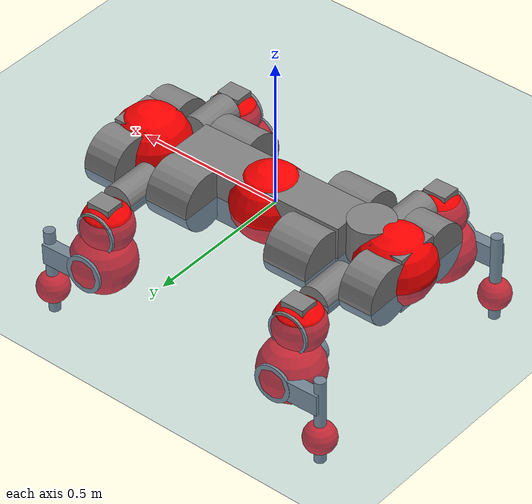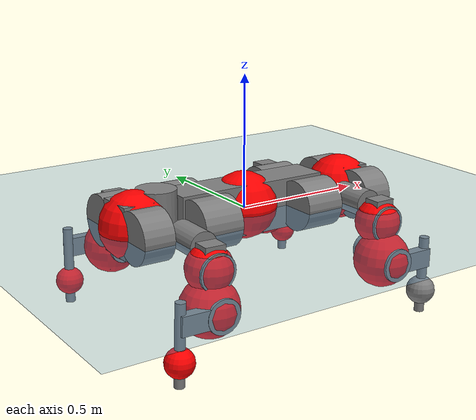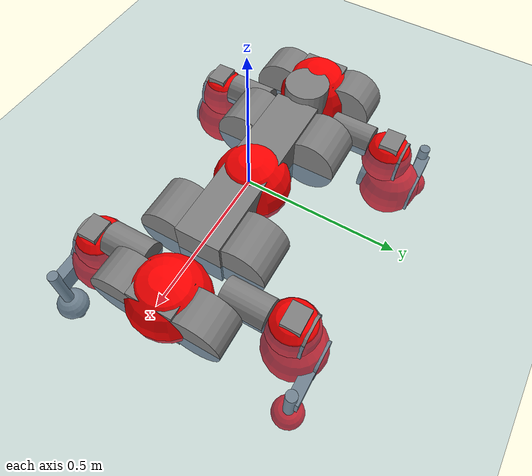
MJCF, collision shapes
<mujoco model="anymal_c">
  <compiler angle="radian" assetdir="assets" balanceinertia="true" inertiafromgeom="false"/>

  <option timestep="0.005" density="1.2" viscosity="2e-05"/>

  <size nkey="1"/>

  <visual>
    <quality shadowsize="8192"/>
    <map shadowclip="0.5"/>
  </visual>

  <default>
    <default class="/">
      <material specular="0" shininess="0.25"/>
      <geom contype="0" conaffinity="0" group="1" solref="-1000 -80"/>
      <site size="0.01 0.005 0.005" group="5"/>
      <general forcelimited="true" forcerange="-80 80" biastype="affine" gainprm="80" biasprm="0 -80 -2"/>
      <default class="anymal_c">
        <joint armature="0.01" damping="0.01" frictionloss="0.1"/>
        <default class="visual">
          <geom type="mesh" group="2"/>
          <default class="visual_zflip"/>
        </default>
        <default class="collision">
          <geom type="cylinder" group="3"/>
          <default class="foot">
            <geom size="0.03 0 0" type="sphere" condim="6" priority="1" friction="0.8 0.02 0.01" solimp="0.015 1 0.03"/>
          </default>
        </default>
      </default>
      <default class="reward_collision_sphere">
        <geom group="5" rgba="1 0 0 1"/>
      </default>
    </default>
  </default>

  <asset>
    <texture type="skybox" colorspace="auto" name="//unnamed_texture_0" builtin="gradient" rgb1="0.95 0.95 0.95" rgb2="0.95 0.95 0.95" width="100" height="600"/>
    <texture type="2d" colorspace="auto" name="texplane" builtin="checker" rgb1="0.345 0.575 0.748" rgb2="0.345 0.575 0.748" markrgb="1 1 1" width="512" height="512"/>
    <texture type="2d" colorspace="linear" name="base" file="base.png"/>
    <texture type="2d" colorspace="linear" name="top_shell" file="top_shell.png"/>
    <texture type="2d" colorspace="linear" name="bottom_shell" file="bottom_shell.png"/>
    <texture type="2d" colorspace="linear" name="remote" file="remote.png"/>
    <texture type="2d" colorspace="linear" name="hatch" file="hatch.png"/>
    <texture type="2d" colorspace="linear" name="handle" file="handle.png"/>
    <texture type="2d" colorspace="linear" name="face" file="face.png"/>
    <texture type="2d" colorspace="linear" name="battery" file="battery.png"/>
    <texture type="2d" colorspace="linear" name="lidar_cage" file="lidar_cage.png"/>
    <texture type="2d" colorspace="linear" name="depth_camera" file="depth_camera.png"/>
    <texture type="2d" colorspace="linear" name="wide_angle_camera" file="wide_angle_camera.png"/>
    <texture type="2d" colorspace="linear" name="lidar" file="lidar.png"/>
    <texture type="2d" colorspace="linear" name="drive" file="drive.png"/>
    <texture type="2d" colorspace="linear" name="hip_l" file="hip_l.png"/>
    <texture type="2d" colorspace="linear" name="shank_l" file="shank_l.png"/>
    <texture type="2d" colorspace="linear" name="foot" file="foot.png"/>
    <texture type="2d" colorspace="linear" name="thigh" file="thigh.png"/>
    <texture type="2d" colorspace="linear" name="shank_r" file="shank_r.png"/>
    <texture type="2d" colorspace="linear" name="hip_r" file="hip_r.png"/>
    <material name="MatPlane" class="/" texture="texplane" texuniform="true" texrepeat="2 2" specular="0.9" shininess="0.5"/>
    <material name="black_plastic" class="/" rgba="0.007 0.007 0.007 1"/>
    <material name="green" class="/" rgba="0.052 0.178 0.033 1"/>
    <material name="red" class="/" rgba="0.178 0.006 0.005 1"/>
    <material name="yellow" class="/" rgba="0.178 0.119 0.006 1"/>
    <material name="lwl" class="/" rgba="0.8 0.8 0.8 1"/>
    <material name="base" class="/" texture="base"/>
    <material name="top_shell" class="/" texture="top_shell"/>
    <material name="bottom_shell" class="/" texture="bottom_shell"/>
    <material name="hip_l" class="/" texture="hip_l"/>
    <material name="thigh" class="/" texture="thigh"/>
    <material name="shank_l" class="/" texture="shank_l"/>
    <material name="foot" class="/" texture="foot"/>
    <material name="hip_r" class="/" texture="hip_r"/>
    <material name="shank" class="/" texture="shank_r"/>
    <material name="hatch" class="/" texture="hatch"/>
    <material name="remote" class="/" texture="remote"/>
    <material name="handle" class="/" texture="handle"/>
    <material name="face" class="/" texture="face"/>
    <material name="depth_camera" class="/" texture="depth_camera"/>
    <material name="wide_angle_camera" class="/" texture="wide_angle_camera"/>
    <material name="battery" class="/" texture="battery"/>
    <material name="lidar_cage" class="/" texture="lidar_cage"/>
    <material name="lidar" class="/" texture="lidar"/>
    <material name="drive" class="/" texture="drive"/>
    <mesh name="base_0" class="/" file="base_0.obj"/>
    <mesh name="base_1" class="/" file="base_1.obj"/>
    <mesh name="base_2" class="/" file="base_2.obj"/>
    <mesh name="base_3" class="/" file="base_3.obj"/>
    <mesh name="base_4" class="/" file="base_4.obj"/>
    <mesh name="base_5" class="/" file="base_5.obj"/>
    <mesh name="top_shell" class="/" file="top_shell.obj"/>
    <mesh name="bottom_shell" class="/" file="bottom_shell.obj"/>
    <mesh name="remote" class="/" file="remote.obj"/>
    <mesh name="handle" class="/" file="handle.obj"/>
    <mesh name="face" class="/" file="face.obj"/>
    <mesh name="wide_angle_camera" class="/" file="wide_angle_camera.obj"/>
    <mesh name="depth_camera" class="/" file="depth_camera.obj"/>
    <mesh name="battery" class="/" file="battery.obj"/>
    <mesh name="lidar_cage" class="/" file="lidar_cage.obj"/>
    <mesh name="lidar" class="/" file="lidar.obj"/>
    <mesh name="drive" class="/" file="drive.obj"/>
    <mesh name="hip_l" class="/" file="hip_l.obj"/>
    <mesh name="thigh" class="/" file="thigh.obj"/>
    <mesh name="shank_l" class="/" file="shank_l.obj"/>
    <mesh name="foot" class="/" file="foot.obj"/>
    <mesh name="hip_r" class="/" file="hip_r.obj"/>
    <mesh name="hatch" class="/" file="hatch.obj"/>
    <mesh name="shank_r" class="/" file="shank_r.obj"/>
  </asset>

  <worldbody>
    <geom name="floor" class="/" size="100 100 0.125" type="plane" group="0" material="MatPlane"/>
    <light name="toplight_shadow" class="/" pos="0 0 5" dir="0.0990148 0.0990148 -0.990148" type="directional" ambient="0.04 0.04 0.04" diffuse="0.55 0.55 0.55" specular="0.12 0.12 0.12"/>
    <light name="toplight_fill" class="/" pos="0 0 5" dir="0.0990148 0.0990148 -0.990148" type="directional" castshadow="false" ambient="0.04 0.04 0.04" diffuse="0.3 0.3 0.3" specular="0.08 0.08 0.08"/>
    <body name="trunk" childclass="anymal_c" pos="0.00346073 0.0135874 0.00905894" quat="0.999977 -0.000488138 0.00517592 0.00442103">
      <inertial pos="0.0147495 0.0185468 0.00764295" quat="0.455467 0.487762 0.517985 0.535098" mass="22.67" diaginertia="1.06199 11.6187 0.00318514"/>
      <joint name="//unnamed_joint_0" type="free" armature="0" damping="0" frictionloss="0"/>
      <geom name="//unnamed_geom_1" class="visual" material="green" mesh="base_0"/>
      <geom name="//unnamed_geom_2" class="visual" material="yellow" mesh="base_1"/>
      <geom name="//unnamed_geom_3" class="visual" material="red" mesh="base_2"/>
      <geom name="//unnamed_geom_4" class="visual" material="black_plastic" mesh="base_3"/>
      <geom name="//unnamed_geom_5" class="visual" material="lwl" mesh="base_4"/>
      <geom name="//unnamed_geom_6" class="visual" material="base" mesh="base_5"/>
      <geom name="trunk_1" class="collision" size="0.306463 0.0739739 0.0951094" type="box"/>
      <geom name="trunk_2" class="collision" size="0.0951094 0.0766159" pos="0.221614 0.120452 0" quat="0.707107 0 0.707107 0"/>
      <geom name="trunk_3" class="collision" size="0.0951094 0.0766159" pos="-0.221614 0.120452 0" quat="0.707107 0 0.707107 0"/>
      <geom name="trunk_4" class="collision" size="0.0951094 0.0766159" pos="0.221614 -0.120452 0" quat="0.707107 0 0.707107 0"/>
      <geom name="trunk_5" class="collision" size="0.0951094 0.0766159" pos="-0.221614 -0.120452 0" quat="0.707107 0 0.707107 0"/>
      <geom name="//unnamed_geom_12" class="visual" material="top_shell" mesh="top_shell"/>
      <geom name="//unnamed_geom_13" class="visual" material="bottom_shell" mesh="bottom_shell"/>
      <geom name="//unnamed_geom_14" class="visual" material="remote" mesh="remote"/>
      <geom name="//unnamed_geom_15" class="visual" material="handle" mesh="handle"/>
      <geom name="//unnamed_geom_16" class="visual" pos="0.42234 0 0" quat="1 0 0 0" material="face" mesh="face"/>
      <geom name="trunk_6" class="collision" size="0.0581224 0.0739739 0.0951094" pos="0.47838 0 0" type="box"/>
      <geom name="//unnamed_geom_18" class="collision" size="0.0951094 0.0581224" pos="0.47838 0.120452 0" quat="0.707107 0 0.707107 0"/>
      <geom name="//unnamed_geom_19" class="collision" size="0.0951094 0.0581224" pos="0.47838 -0.120452 0" quat="0.707107 0 0.707107 0"/>
      <geom name="//unnamed_geom_20" class="visual" pos="0.470358 0 -0.00810437" quat="0.965926 0 0.258819 0" material="depth_camera" mesh="depth_camera"/>
      <geom name="//unnamed_geom_21" class="visual" pos="0.522703 0 0.00644691" material="wide_angle_camera" mesh="wide_angle_camera"/>
      <geom name="//unnamed_geom_22" class="visual_zflip" pos="-0.42234 0 0" quat="0 0 0 1" material="face" mesh="face"/>
      <geom name="trunk_7" class="collision" size="0.0581224 0.0739739 0.0951094" pos="-0.47838 0 0" quat="0 0 0 1" type="box"/>
      <geom name="//unnamed_geom_24" class="collision" size="0.0951094 0.0581224" pos="-0.47838 -0.120452 0" quat="0 -0.707107 0 0.707107"/>
      <geom name="//unnamed_geom_25" class="collision" size="0.0951094 0.0581224" pos="-0.47838 0.120452 0" quat="0 -0.707107 0 0.707107"/>
      <geom name="//unnamed_geom_26" class="visual" pos="-0.470358 0 -0.00810437" quat="0 -0.258819 0 0.965926" material="depth_camera" mesh="depth_camera"/>
      <geom name="//unnamed_geom_27" class="visual_zflip" pos="-0.522703 0 0.00644691" quat="0 0 0 1" material="wide_angle_camera" mesh="wide_angle_camera"/>
      <geom name="//unnamed_geom_28" class="visual" material="battery" mesh="battery"/>
      <geom name="//unnamed_geom_29" class="visual" pos="0 0.140753 0.0169813" quat="0.683013 -0.183013 0.183013 0.683013" material="depth_camera" mesh="depth_camera"/>
      <geom name="//unnamed_geom_30" class="visual" pos="0 -0.140753 0.0169813" quat="0.683013 0.183013 0.183013 -0.683013" material="depth_camera" mesh="depth_camera"/>
      <geom name="//unnamed_geom_31" class="visual" pos="-0.370885 0 0.0316532" quat="1 0 0 0" material="lidar_cage" mesh="lidar_cage"/>
      <geom name="trunk_8" class="collision" size="0.0739739 0.0634062" pos="-0.370885 0 0.0574925"/>
      <geom name="//unnamed_geom_33" class="visual" pos="-0.370885 0.000275729 0.0612392" quat="0.707107 0 0 -0.707107" material="lidar" mesh="lidar"/>
      <geom name="//unnamed_geom_34" class="visual" pos="0.305572 0.178499 2.22541e-08" quat="0.258819 0.965926 0 0" material="drive" mesh="drive"/>
      <geom name="//unnamed_geom_35" class="visual" pos="0.305572 -0.178499 -2.22541e-08" quat="0.258819 -0.965926 0 0" material="drive" mesh="drive"/>
      <geom name="//unnamed_geom_36" class="visual" pos="-0.305572 0.178499 -2.22541e-08" quat="0 0 0.965926 -0.258819" material="drive" mesh="drive"/>
      <geom name="//unnamed_geom_37" class="visual" pos="-0.305572 -0.178499 2.22541e-08" quat="0 0 -0.965926 -0.258819" material="drive" mesh="drive"/>
      <geom name="//unnamed_geom_38" class="visual" pos="0.118194 0 0.0314378" quat="1 0 0 0" material="hatch" mesh="hatch"/>
      <geom name="//unnamed_geom_39" class="reward_collision_sphere" size="0.126812"/>
      <geom name="//unnamed_geom_40" class="reward_collision_sphere" size="0.126812" pos="0.458512 0 0"/>
      <geom name="//unnamed_geom_41" class="reward_collision_sphere" size="0.126812" pos="-0.458512 0 0"/>
      <site name="imu" pos="0.281809 -0.0094355 -0.00377068" size="0.0105677"/>
      <camera name="track" pos="0 -3.44148 0" quat="0.707107 0.707107 0 0" mode="trackcom"/>
      <camera name="ego_camera" pos="0.458512 0 -0.0172262" quat="-0.5 -0.5 0.5 0.5"/>
      <body name="LF_HIP" pos="0.300173 0.176893 -0.00529202" quat="0.256798 0.966465 0.000463037 -0.000492406">
        <inertial pos="0.0570208 -0.0105284 -0.00666483" quat="-0.0425874 0.735151 -0.171165 0.654555" mass="2.82921" diaginertia="0.00618719 0.0765222 4.66563e-05"/>
        <joint name="LF_HAA" pos="0 0 0" axis="0.998869 0.00456687 -0.0473329" range="-0.482763 0.62727" armature="0.0139213" damping="0" frictionloss="0.121811"/>
        <geom name="//unnamed_geom_42" class="visual" pos="0 0.00130911 -0.00021502" quat="0.258819 -0.965926 0 0" material="hip_l" mesh="hip_l"/>
        <geom name="//unnamed_geom_43" class="visual" pos="0.061033 -0.0827368 -0.0382259" quat="0.183013 -0.683013 0.683013 0.183013" material="drive" mesh="drive"/>
        <geom name="//unnamed_geom_44" class="collision" size="0.0528385 0.0739739" pos="0.061033 -0.0205797 -0.00297368" quat="-0.353553 -0.612372 0.612372 -0.353553"/>
        <body name="LF_THIGH" pos="0.0454224 -0.136765 -0.0266944" quat="0.182472 -0.681202 0.687137 0.174673">
          <inertial pos="0.0349776 -0.0189404 -0.0988719" quat="0.996799 0.0254175 -0.049489 0.0574089" mass="2.96856" diaginertia="0.0386133 0.333861 6.04638e-05"/>
          <joint name="LF_HFE" pos="0 0 0" axis="0.997564 -0.00447602 -0.0696085" range="-2.86398 3.491" armature="0.000376821" damping="0" frictionloss="0.170235"/>
          <geom name="//unnamed_geom_45" class="visual" pos="-0.0139636 -2.20034e-05 0" quat="0.707107 0 0 -0.707107" material="thigh" mesh="thigh"/>
          <geom name="//unnamed_geom_46" class="collision" size="0.0686901 0.0422708" pos="0.0407566 0 0" quat="0.5 0.5 -0.5 -0.5"/>
          <geom name="//unnamed_geom_47" class="collision" size="0.0396289 0.0317031 0.149336" pos="0.0305674 0 -0.0608576" quat="0.707107 0 0 -0.707107" type="box"/>
          <geom name="//unnamed_geom_48" class="visual" pos="0.102197 0 -0.122737" quat="1 0 0 0" material="drive" mesh="drive"/>
          <geom name="//unnamed_geom_49" class="collision" size="0.0528385 0.0739739" pos="0.0308731 0 -0.122737" quat="0.707107 0 0.707107 0"/>
          <geom name="//unnamed_geom_50" class="reward_collision_sphere" size="0.0845417" pos="0.0254729 0 0"/>
          <body name="LF_SHANK" pos="0.0947625 -0.00747809 -0.119669" quat="0.999997 -0.00011596 -0.00221073 -0.00117277">
            <inertial pos="0.0223289 -0.0923272 -0.0193158" quat="0.987666 -0.146872 -0.0342072 -0.0421219" mass="0.712164" diaginertia="0.0127267 0.126713 2.06602e-05"/>
            <joint name="LF_KFE" pos="0 0 0" axis="0.999777 -0.0210621 -0.00175415" range="-3.52191 2.83448" armature="0.0175757" damping="0.093583" frictionloss="0.0564725"/>
            <geom name="//unnamed_geom_51" class="visual" pos="-0.00455323 -0.024278 0" quat="0.707107 0 0 -0.707107" material="shank_l" mesh="shank_l"/>
            <geom name="LF_kfe_act" class="collision" size="0.0634062 0.0211354" pos="0.0203783 0 0" quat="0.5 0.5 -0.5 -0.5"/>
            <geom name="//unnamed_geom_53" class="collision" size="0.0607633 0.035666 0.0200786" pos="0.0203783 -0.0989409 0" quat="0.5 0.5 -0.5 -0.5" type="box"/>
            <geom name="//unnamed_geom_54" class="visual" pos="0.0132979 -0.159163 -0.145549" quat="0.382683 0 0 -0.92388" material="foot" mesh="foot"/>
            <geom name="LF_calf" class="collision" size="0.0184935 0.149271" pos="0.0132968 -0.151339 -0.0727743" quat="0.707107 0 0 -0.707107"/>
            <geom name="LF_foot" class="foot" size="0.031884" pos="0.0132968 -0.151339 -0.135859" quat="0.707107 0 0 -0.707107"/>
            <geom name="//unnamed_geom_57" class="reward_collision_sphere" size="0.105677" pos="-0.0509457 0 0"/>
            <geom name="//unnamed_geom_58" class="reward_collision_sphere" size="0.0528385" pos="0.0132968 -0.151339 -0.135859"/>
            <site name="LF_foot" class="foot" pos="0.0132968 -0.151339 -0.135859" quat="0.707107 0 0 -0.707107" size="0.0105677"/>
          </body>
        </body>
      </body>
      <body name="RF_HIP" pos="0.32444 -0.167971 0.0116454" quat="0.261835 -0.96511 -0.00227773 0.000220075">
        <inertial pos="0.0642512 0.0161391 0.00716717" quat="0.172683 0.689848 0.0525959 0.701087" mass="3.52523" diaginertia="0.00722568 0.0741543 4.09504e-05"/>
        <joint name="RF_HAA" pos="0 0 0" axis="0.998127 -0.0465233 0.0397143" stiffness="0.09675" range="-0.601789 0.394869" armature="0.01576" damping="0" frictionloss="0.059849"/>
        <geom name="//unnamed_geom_59" class="visual" pos="0 -0.0013091 -0.00021502" quat="0.258819 0.965926 0 0" material="hip_r" mesh="hip_r"/>
        <geom name="//unnamed_geom_60" class="visual" pos="0.061033 0.0827368 -0.0382259" quat="0.183013 0.683013 0.683013 -0.183013" material="drive" mesh="drive"/>
        <geom name="//unnamed_geom_61" class="collision" size="0.0528385 0.0739739" pos="0.061033 0.0205797 -0.00297368" quat="-0.353553 0.612372 0.612372 0.353553"/>
        <body name="RF_THIGH" pos="0.0714037 0.128774 -0.00133892" quat="0.183317 0.682892 0.683121 -0.182755">
          <inertial pos="0.0198645 0.013331 -0.123302" quat="0.988871 -0.0193897 -0.0654165 0.132209" mass="3.30636" diaginertia="0.039832 0.464352 6.38688e-05"/>
          <joint name="RF_HFE" pos="0 0 0" axis="0.99966 -0.0173318 -0.0194618" range="-3.06038 2.94829" armature="0.0186778" damping="0" frictionloss="0.174259"/>
          <geom name="//unnamed_geom_62" class="visual" pos="-0.0139636 -2.20034e-05 0" quat="0.707107 0 0 -0.707107" material="thigh" mesh="thigh"/>
          <geom name="//unnamed_geom_63" class="collision" size="0.0686901 0.0422708" pos="0.0407566 0 0" quat="0.5 0.5 0.5 0.5"/>
          <geom name="//unnamed_geom_64" class="collision" size="0.0396289 0.0317031 0.149336" pos="0.0305674 0 -0.0608576" quat="0.707107 0 0 0.707107" type="box"/>
          <geom name="//unnamed_geom_65" class="visual" pos="0.102197 0 -0.122737" quat="1 0 0 0" material="drive" mesh="drive"/>
          <geom name="//unnamed_geom_66" class="collision" size="0.0528385 0.0739739" pos="0.0308731 0 -0.122737" quat="0.707107 0 0.707107 0"/>
          <geom name="//unnamed_geom_67" class="reward_collision_sphere" size="0.0845417" pos="0.0254729 0 0"/>
          <body name="RF_SHANK" pos="0.109782 1.42572e-05 -0.139653" quat="0.999993 -0.00120261 0.00328754 -0.00153068">
            <inertial pos="0.0185848 0.0919805 -0.0397307" quat="0.992004 0.102271 0.0226343 0.0703968" mass="0.526466" diaginertia="0.00960386 0.08771 1.46872e-05"/>
            <joint name="RF_KFE" pos="0 0 0" axis="0.999623 -0.0178085 0.0208986" range="-3.32853 2.97066" armature="0.0137215" damping="0.102824" frictionloss="0.157654"/>
            <geom name="//unnamed_geom_68" class="visual" pos="-0.0045532 0.024278 0" quat="0.707107 0 0 0.707107" material="shank" mesh="shank_r"/>
            <geom name="RF_kfe_act" class="collision" size="0.0634062 0.0211354" pos="0.0203783 0 0" quat="0.5 0.5 0.5 0.5"/>
            <geom name="//unnamed_geom_70" class="collision" size="0.0607633 0.035666 0.0200786" pos="0.0203783 0.0989409 0" quat="0.5 0.5 0.5 0.5" type="box"/>
            <geom name="//unnamed_geom_71" class="visual" pos="0.0132957 0.159163 -0.145549" quat="0.382683 0 0 0.92388" material="foot" mesh="foot"/>
            <geom name="RF_calf" class="collision" size="0.0184935 0.149271" pos="0.0132968 0.151339 -0.0727743" quat="0.707107 0 0 0.707107"/>
            <geom name="RF_foot" class="foot" size="0.0541298" pos="0.0132968 0.151339 -0.135859" quat="0.707107 0 0 0.707107"/>
            <geom name="//unnamed_geom_74" class="reward_collision_sphere" size="0.105677" pos="-0.0509457 0 0"/>
            <geom name="//unnamed_geom_75" class="reward_collision_sphere" size="0.0528385" pos="0.0132968 0.151339 -0.135859"/>
            <site name="RF_foot" class="foot" pos="0.0132968 0.151339 -0.135859" quat="0.707107 0 0 0.707107" size="0.0105677"/>
          </body>
        </body>
      </body>
      <body name="LH_HIP" pos="-0.306035 0.16747 -0.0146921" quat="-0.00144501 0.00133764 0.965743 -0.259492">
        <inertial pos="0.0505065 0.0339705 -0.0164306" quat="0.134221 0.677401 0.167 0.703721" mass="4.58695" diaginertia="0.00791488 0.0956473 4.64549e-05"/>
        <joint name="LH_HAA" pos="0 0 0" axis="0.99864 0.005206 0.0518735" range="-0.811827 0.912756" armature="0.0147446" damping="0.0257698" frictionloss="0.0268084"/>
        <geom name="//unnamed_geom_76" class="visual" pos="0 -0.0013091 -0.00021502" quat="-0.258819 -0.965926 0 0" material="hip_r" mesh="hip_r"/>
        <geom name="//unnamed_geom_77" class="visual" pos="0.061033 0.0827368 -0.0382259" quat="0.183013 0.683013 0.683013 -0.183013" material="drive" mesh="drive"/>
        <geom name="//unnamed_geom_78" class="collision" size="0.0528385 0.0739739" pos="0.061033 0.0205797 -0.00297368" quat="-0.353553 0.612372 0.612372 0.353553"/>
        <body name="LH_THIGH" pos="0.0612756 0.136298 -0.0262464" quat="0.185766 0.684493 0.678833 -0.190122">
          <inertial pos="0.0272478 -0.019687 -0.115311" quat="0.984244 0.0338249 -0.085292 0.151142" mass="4.54595" diaginertia="0.0389743 0.388646 4.99518e-05"/>
          <joint name="LH_HFE" pos="0 0 0" axis="0.995519 0.0907816 -0.0264689" stiffness="0.0280021" range="-3.01946 3.22521" armature="0.00357557" damping="0" frictionloss="0.170421"/>
          <geom name="//unnamed_geom_79" class="visual" pos="-0.0139636 -2.20034e-05 0" quat="0.707107 0 0 -0.707107" material="thigh" mesh="thigh"/>
          <geom name="//unnamed_geom_80" class="collision" size="0.0686901 0.0422708" pos="0.0407566 0 0" quat="0.5 0.5 -0.5 -0.5"/>
          <geom name="//unnamed_geom_81" class="collision" size="0.0396289 0.0317031 0.149336" pos="0.0305674 0 -0.0608576" quat="0.707107 0 0 -0.707107" type="box"/>
          <geom name="//unnamed_geom_82" class="visual" pos="0.102197 0 -0.122737" quat="1 0 0 0" material="drive" mesh="drive"/>
          <geom name="//unnamed_geom_83" class="collision" size="0.0528385 0.0739739" pos="0.0308731 0 -0.122737" quat="0.707107 0 0.707107 0"/>
          <geom name="//unnamed_geom_84" class="reward_collision_sphere" size="0.0845417" pos="0.0254729 0 0"/>
          <body name="LH_SHANK" pos="0.112948 0.00102518 -0.136775" quat="0.999982 -0.00283797 0.00458376 0.00257806">
            <inertial pos="0.00241286 0.0896371 -0.0294102" quat="0.991426 0.123537 0.0186181 0.0382903" mass="0.706718" diaginertia="0.0120254 0.150539 1.80242e-05"/>
            <joint name="LH_KFE" pos="0 0 0" axis="0.999943 0.00621009 -0.00863626" range="-3.51276 3.08357" armature="0.000502873" damping="0" frictionloss="0.175697"/>
            <geom name="//unnamed_geom_85" class="visual" pos="-0.0045532 0.024278 0" quat="-0.707107 0 0 -0.707107" material="shank" mesh="shank_r"/>
            <geom name="LH_kfe_act" class="collision" size="0.0634062 0.0211354" pos="0.0203783 0 0" quat="0.5 0.5 -0.5 -0.5"/>
            <geom name="//unnamed_geom_87" class="collision" size="0.0607633 0.035666 0.0200786" pos="0.0203783 0.0989409 0" quat="0.5 0.5 -0.5 -0.5" type="box"/>
            <geom name="//unnamed_geom_88" class="visual" pos="0.0132957 0.159163 -0.145549" quat="-0.382683 0 0 -0.92388" material="foot" mesh="foot"/>
            <geom name="LH_calf" class="collision" size="0.0184935 0.149271" pos="0.0132968 0.151339 -0.0727743" quat="0.707107 0 0 -0.707107"/>
            <geom name="LH_foot" class="foot" size="0.0289825" pos="0.0132968 0.151339 -0.135859" quat="0.707107 0 0 -0.707107"/>
            <geom name="//unnamed_geom_91" class="reward_collision_sphere" size="0.105677" pos="-0.0509457 0 0"/>
            <geom name="//unnamed_geom_92" class="reward_collision_sphere" size="0.0528385" pos="0.0132968 0.151339 -0.135859"/>
            <site name="LH_foot" class="foot" pos="0.0132968 0.151339 -0.135859" quat="0.707107 0 0 -0.707107" size="0.0105677"/>
          </body>
        </body>
      </body>
      <body name="RH_HIP" pos="-0.286974 -0.182892 -0.00819063" quat="0.00369315 -0.0073148 -0.964506 -0.263936">
        <inertial pos="0.0529493 -0.0173053 0.00258113" quat="-0.115858 0.709304 -0.126142 0.683778" mass="3.83276" diaginertia="0.00725688 0.075313 4.2031e-05"/>
        <joint name="RH_HAA" pos="0 0 0" axis="0.999672 -0.0146045 -0.0210574" range="-0.571837 0.215077" armature="0.00123463" damping="0.00910934" frictionloss="0.0375845"/>
        <geom name="//unnamed_geom_93" class="visual" pos="0 0.00130911 -0.00021502" quat="-0.258819 0.965926 0 0" material="hip_l" mesh="hip_l"/>
        <geom name="//unnamed_geom_94" class="visual" pos="0.061033 -0.0827368 -0.0382259" quat="-0.183013 0.683013 -0.683013 -0.183013" material="drive" mesh="drive"/>
        <geom name="//unnamed_geom_95" class="collision" size="0.0528385 0.0739739" pos="0.061033 -0.0205797 -0.00297368" quat="0.353553 0.612372 -0.612372 0.353553"/>
        <body name="RH_THIGH" pos="0.0749129 -0.139916 -0.008703" quat="-0.178561 0.682074 -0.685333 -0.182235">
          <inertial pos="0.0286466 0.0147728 -0.100525" quat="0.991145 0.000312063 -0.0679472 0.114083" mass="2.90312" diaginertia="0.0321344 0.45132 6.52655e-05"/>
          <joint name="RH_HFE" pos="0 0 0" axis="0.999989 0.00129339 -0.00439898" range="-3.23147 2.75587" armature="0.0205357" damping="0" frictionloss="0.132504"/>
          <geom name="//unnamed_geom_96" class="visual" pos="-0.0139636 -2.20034e-05 0" quat="0.707107 0 0 -0.707107" material="thigh" mesh="thigh"/>
          <geom name="//unnamed_geom_97" class="collision" size="0.0686901 0.0422708" pos="0.0407566 0 0" quat="0.5 0.5 0.5 0.5"/>
          <geom name="//unnamed_geom_98" class="collision" size="0.0396289 0.0317031 0.149336" pos="0.0305674 0 -0.0608576" quat="0.707107 0 0 0.707107" type="box"/>
          <geom name="//unnamed_geom_99" class="visual" pos="0.102197 0 -0.122737" quat="1 0 0 0" material="drive" mesh="drive"/>
          <geom name="//unnamed_geom_100" class="collision" size="0.0528385 0.0739739" pos="0.0308731 0 -0.122737" quat="0.707107 0 0.707107 0"/>
          <geom name="//unnamed_geom_101" class="reward_collision_sphere" size="0.0845417" pos="0.0254729 0 0"/>
          <body name="RH_SHANK" pos="0.0897101 -0.00430033 -0.133461" quat="0.999996 -0.000550284 0.000623702 0.00267807">
            <inertial pos="0.0179763 -0.111728 -0.0329898" quat="0.992194 -0.12303 -0.00124846 -0.0203108" mass="0.563198" diaginertia="0.00971341 0.116747 1.73227e-05"/>
            <joint name="RH_KFE" pos="0 0 0" axis="0.997228 0.0740842 -0.00692416" range="-3.47451 2.91316" armature="0.0145809" damping="0.0291441" frictionloss="0.0415761"/>
            <geom name="//unnamed_geom_102" class="visual" pos="-0.00455323 -0.024278 0" quat="0.707107 0 0 -0.707107" material="shank_l" mesh="shank_l"/>
            <geom name="RH_kfe_act" class="collision" size="0.0634062 0.0211354" pos="0.0203783 0 0" quat="0.5 0.5 0.5 0.5"/>
            <geom name="//unnamed_geom_104" class="collision" size="0.0607633 0.035666 0.0200786" pos="0.0203783 -0.0989409 0" quat="0.5 0.5 0.5 0.5" type="box"/>
            <geom name="//unnamed_geom_105" class="visual" pos="0.0132979 -0.159163 -0.145549" quat="0.382683 0 0 -0.92388" material="foot" mesh="foot"/>
            <geom name="RH_calf" class="collision" size="0.0184935 0.149271" pos="0.0132968 -0.151339 -0.0727743" quat="0.707107 0 0 0.707107"/>
            <geom name="RH_foot" class="foot" size="0.008726" pos="0.0132968 -0.151339 -0.135859" quat="0.707107 0 0 0.707107"/>
            <geom name="//unnamed_geom_108" class="reward_collision_sphere" size="0.105677" pos="-0.0509457 0 0"/>
            <geom name="//unnamed_geom_109" class="reward_collision_sphere" size="0.0528385" pos="0.0132968 -0.151339 -0.135859"/>
            <site name="RH_foot" class="foot" pos="0.0132968 -0.151339 -0.135859" quat="0.707107 0 0 0.707107" size="0.0105677"/>
          </body>
        </body>
      </body>
    </body>
  </worldbody>

  <contact>
    <pair class="/" geom1="floor" geom2="LF_foot" name="//unnamed_contact_0"/>
    <pair class="/" geom1="floor" geom2="RF_foot" name="//unnamed_contact_1"/>
    <pair class="/" geom1="floor" geom2="LH_foot" name="//unnamed_contact_2"/>
    <pair class="/" geom1="floor" geom2="RH_foot" name="//unnamed_contact_3"/>
  </contact>

  <actuator>
    <general name="LF_HAA" class="/" joint="LF_HAA" forcerange="-49.3521 49.3521" gainprm="83.2908" biasprm="0 -83.2908 -1.85209"/>
    <general name="LF_HFE" class="/" joint="LF_HFE" forcerange="-92.4106 92.4106" gainprm="83.2908" biasprm="0 -83.2908 -1.85209"/>
    <general name="LF_KFE" class="/" joint="LF_KFE" forcerange="-70.3094 70.3094" gainprm="83.2908" biasprm="0 -83.2908 -1.85209"/>
    <general name="RF_HAA" class="/" joint="RF_HAA" forcerange="-121.527 121.527" gainprm="83.2908" biasprm="0 -83.2908 -1.85209"/>
    <general name="RF_HFE" class="/" joint="RF_HFE" forcerange="-97.8743 97.8743" gainprm="83.2908" biasprm="0 -83.2908 -1.85209"/>
    <general name="RF_KFE" class="/" joint="RF_KFE" forcerange="-130.355 130.355" gainprm="83.2908" biasprm="0 -83.2908 -1.85209"/>
    <general name="LH_HAA" class="/" joint="LH_HAA" forcerange="-114.008 114.008" gainprm="83.2908" biasprm="0 -83.2908 -1.85209"/>
    <general name="LH_HFE" class="/" joint="LH_HFE" forcerange="-97.4541 97.4541" gainprm="83.2908" biasprm="0 -83.2908 -1.85209"/>
    <general name="LH_KFE" class="/" joint="LH_KFE" forcerange="-57.6087 57.6087" gainprm="83.2908" biasprm="0 -83.2908 -1.85209"/>
    <general name="RH_HAA" class="/" joint="RH_HAA" forcerange="-120.399 120.399" gainprm="83.2908" biasprm="0 -83.2908 -1.85209"/>
    <general name="RH_HFE" class="/" joint="RH_HFE" forcerange="-52.9993 52.9993" gainprm="83.2908" biasprm="0 -83.2908 -1.85209"/>
    <general name="RH_KFE" class="/" joint="RH_KFE" forcerange="-30.6731 30.6731" gainprm="83.2908" biasprm="0 -83.2908 -1.85209"/>
  </actuator>

  <sensor>
    <gyro site="imu" name="imu_angular_velocity"/>
    <velocimeter site="imu" name="imu_linear_velocity"/>
    <framelinvel objtype="site" objname="LF_foot" name="LF_foot_global_linear_velocity"/>
    <framelinvel objtype="site" objname="RF_foot" name="RF_foot_global_linear_velocity"/>
    <framelinvel objtype="site" objname="LH_foot" name="LH_foot_global_linear_velocity"/>
    <framelinvel objtype="site" objname="RH_foot" name="RH_foot_global_linear_velocity"/>
  </sensor>

  <keyframe>
    <key name="home" qpos="0 0 0.55 1 0 0 0 0 0.4 -0.8 0 -0.4 0.8 0 -0.4 0.8 0 0.4 -0.8"/>
  </keyframe>
</mujoco>
